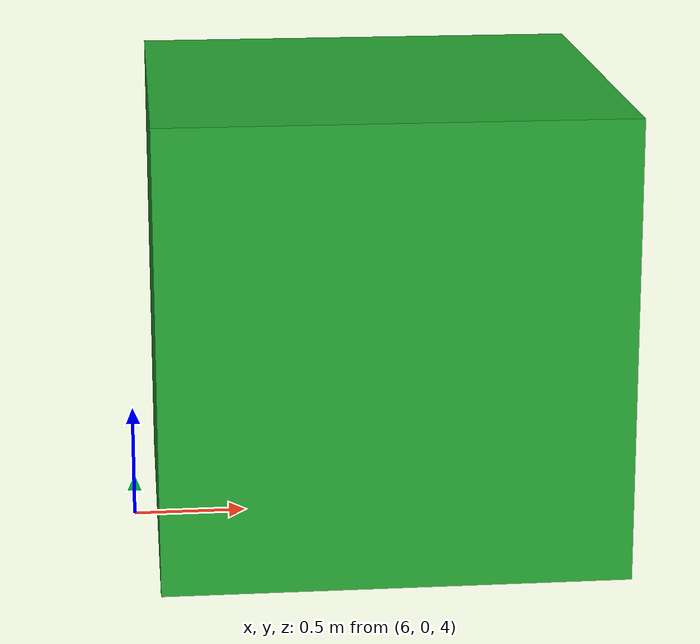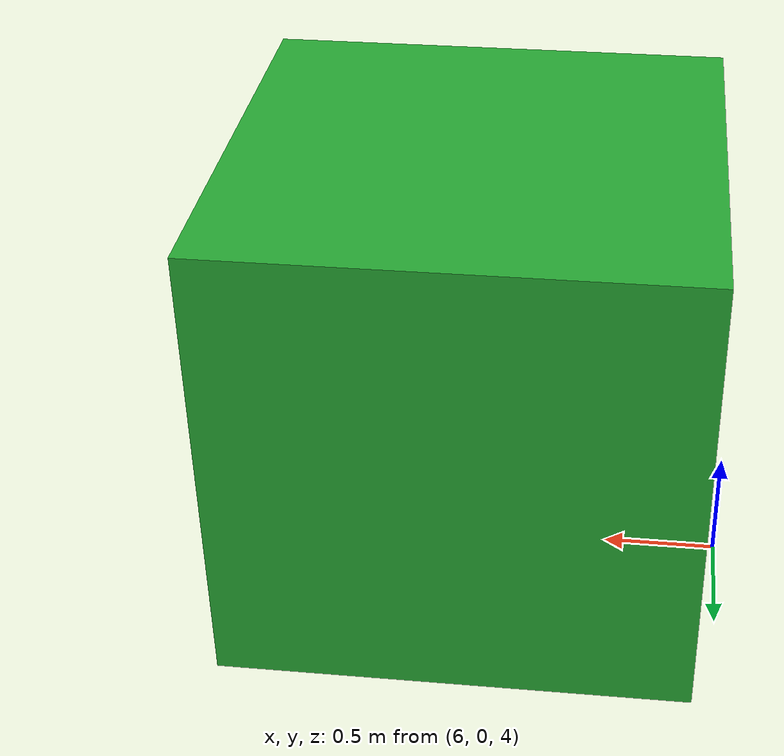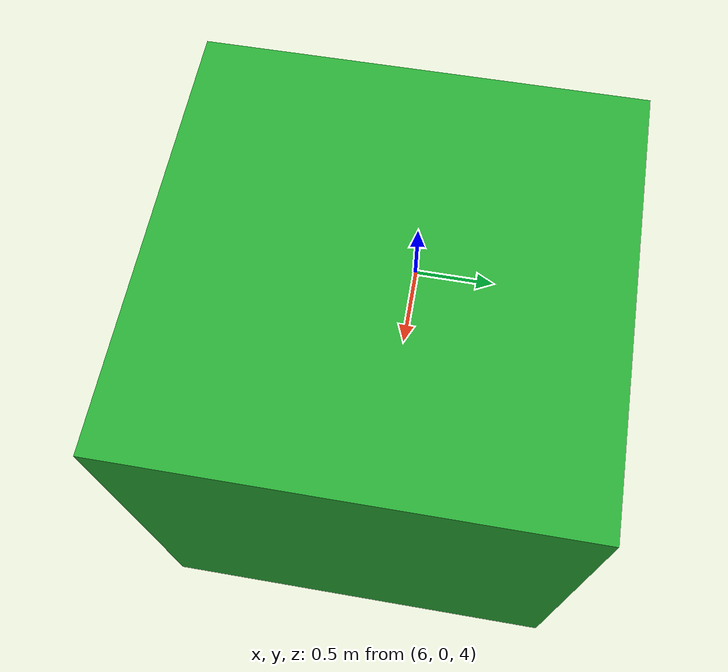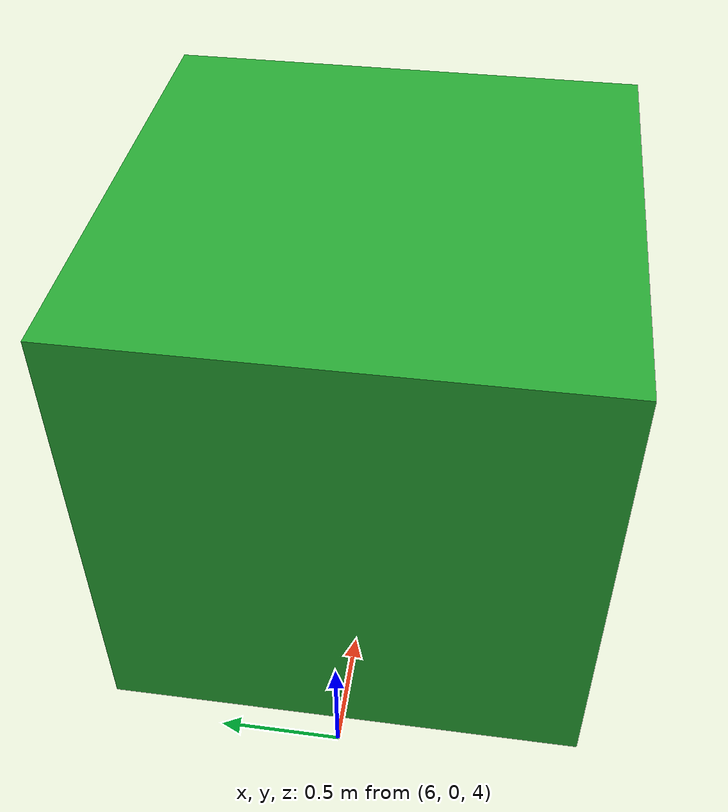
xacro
<?xml version="1.0" ?>
<robot xmlns:xacro="http://www.ros.org/wiki/xacro"
	name="my_simple_boxes">

  <xacro:macro name="box_inertial" params="x y z mass *origin">
    <inertial>
      <mass value="${mass}" />
      <insert_block name="origin" />
      <inertia ixx="${0.0833333 * mass * (y*y + z*z)}" ixy="0.0" ixz="0.0"
          iyy="${0.0833333 * mass * (x*x + z*z)}" iyz="0.0"
          izz="${0.0833333 * mass * (x*x + y*y)}" />
    </inertial>
  </xacro:macro>

  <!-- box dimensions -->
  <xacro:property name="box_width" value="2" />
  <xacro:property name="box_length" value="2" />
  <xacro:property name="box_height" value="2" />

  <!-- box mass -->
  <xacro:property name="box_mass" value="5.0" />

  <!-- desired origin of first box relative to the belt  -->
  <!-- ${width0+width1+width_b/2} x x -->
  <xacro:property name="o_x" value="7.1" />
  <xacro:property name="o_y" value="0" />
  <xacro:property name="o_z" value="5" />

  <!-- box 1 -->
  <link name="box_1">
    <visual>
      <origin xyz="${o_x} ${o_y} ${o_z}" rpy="0 0 0"/>
      <geometry>
	<box size="${box_width} ${box_length} ${box_height}"/>
      </geometry>
    </visual>

    <collision>
      <origin xyz="${o_x} ${o_y} ${o_z}" rpy="0 0 0"/>
      <geometry>
	<box size="${box_width} ${box_length} ${box_height}"/>
      </geometry>
    </collision>

    <xacro:box_inertial x="${box_width}" y="${box_length}" z="${box_height}" mass="${box_mass}">
	<origin xyz="${o_x} ${o_y} ${o_z}" rpy="0 0 0"/>
    </xacro:box_inertial>
  </link>

  <gazebo reference="box_1">
	<material>Gazebo/Green</material>
  </gazebo>

</robot>
